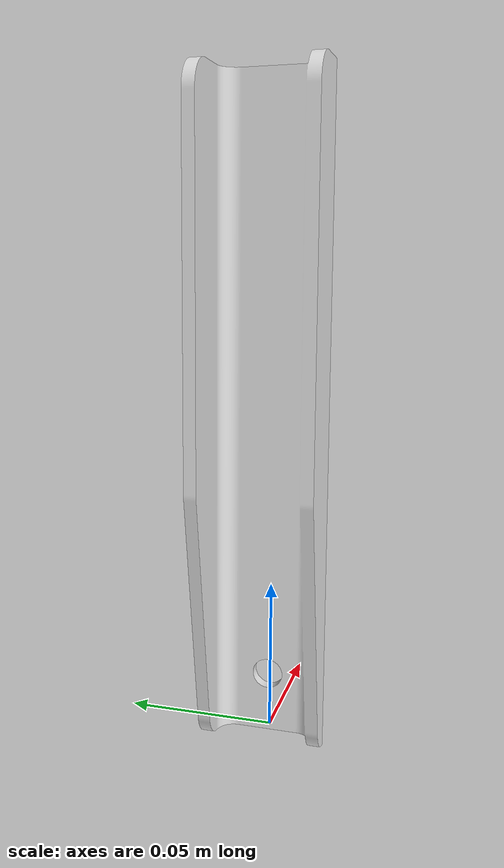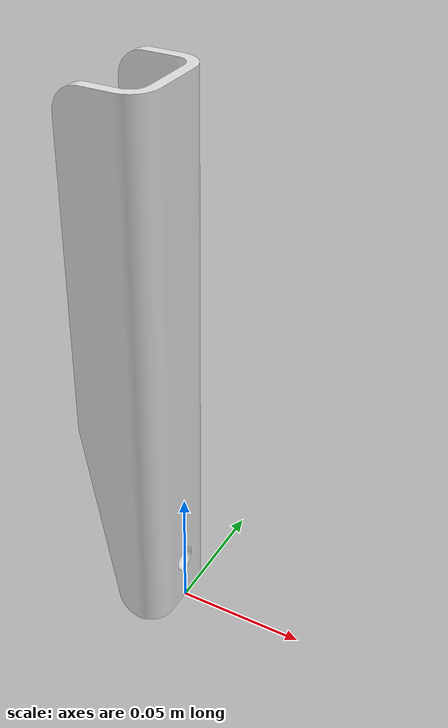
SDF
<?xml version="1.0" ?>
<sdf version="1.6">
  <model name="test_model">
    <static>true</static>
    <link name="link">

      <!-- Inertial properties -->
      <inertial>
        <mass>1.0</mass>
        <inertia>
          <!-- Replace these values with actual values for your object -->
          <ixx>0.01</ixx>
          <iyy>0.01</iyy>
          <izz>0.01</izz>
          <ixy>0.0</ixy>
          <ixz>0.0</ixz>
          <iyz>0.0</iyz>
        </inertia>
        <pose>0 0 0 0 0 0</pose> <!-- Optional: adjust pose of the center of mass -->
      </inertial>
      <!-- Visual properties -->
      <visual name="visual">
        <geometry>
          <mesh>
            <uri>file:///home/muneeb/Public/robotics_ws/src/bras_robot_description/models/pick_object/meshes/test_obj.dae</uri>
          </mesh>
        </geometry>
      </visual>

      <!-- Collision properties -->
      <collision name="collision">
        <geometry>
          <mesh>
            <uri>file:///home/muneeb/Public/robotics_ws/src/bras_robot_description/models/pick_object/meshes/test_obj.dae</uri>
          </mesh>
        </geometry>
      </collision>

    </link>
  </model>
</sdf>
